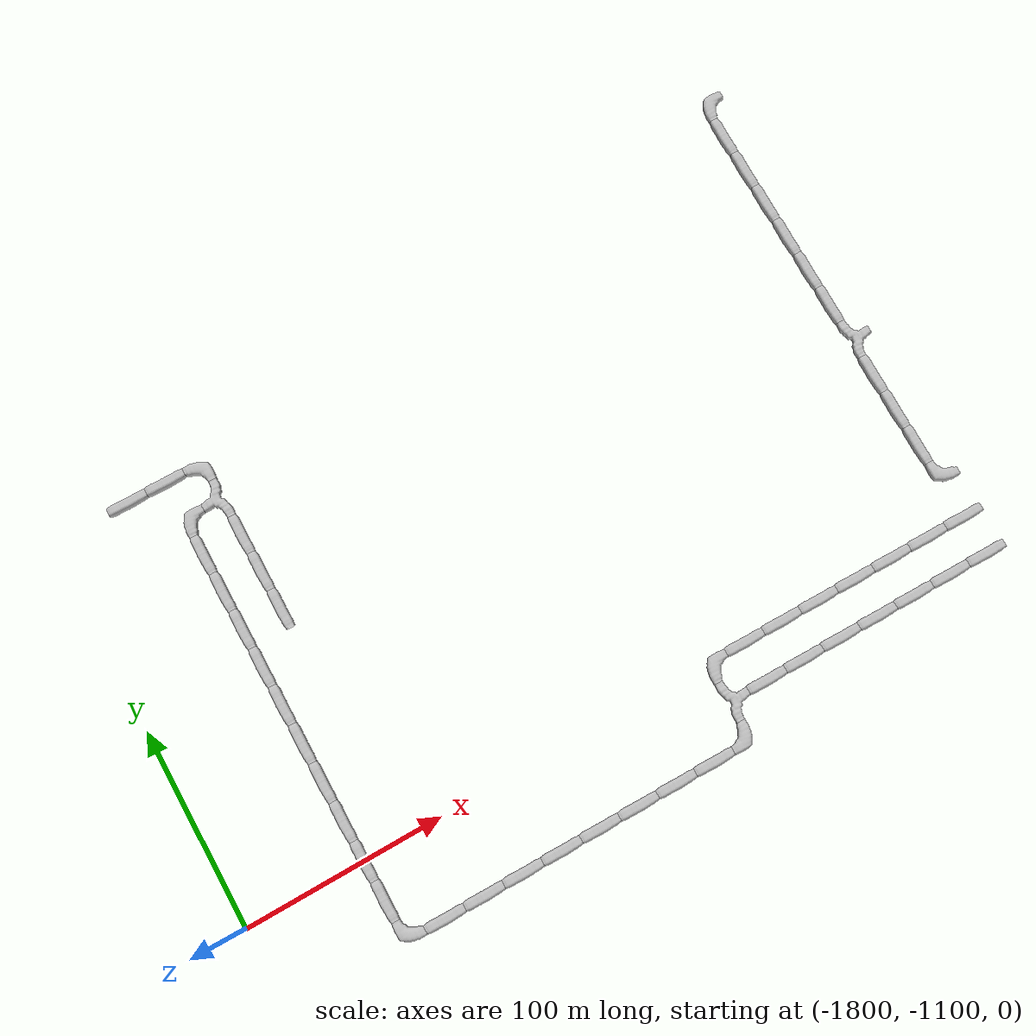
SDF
<sdf version="1.6">
 <world name="cave_32000_64">
  <include>
   <static>true</static>
   <name>cave_-71_-56</name>
   <pose>-1420 -1120 0 0 0 1.5707963267948966</pose>
   <uri>model://cave_straight_20m</uri>
  </include>
  <include>
   <static>true</static>
   <name>cave_-72_-56</name>
   <pose>-1440 -1120 0 0 0 1.5707963267948966</pose>
   <uri>model://cave_straight_20m</uri>
  </include>
  <include>
   <static>true</static>
   <name>cave_-73_-56</name>
   <pose>-1460 -1120 0 0 0 1.5707963267948966</pose>
   <uri>model://cave_straight_20m</uri>
  </include>
  <include>
   <static>true</static>
   <name>cave_-74_-56</name>
   <pose>-1480 -1120 0 0 0 1.5707963267948966</pose>
   <uri>model://cave_straight_20m</uri>
  </include>
  <include>
   <static>true</static>
   <name>cave_-75_-56</name>
   <pose>-1500 -1120 0 0 0 1.5707963267948966</pose>
   <uri>model://cave_straight_20m</uri>
  </include>
  <include>
   <static>true</static>
   <name>cave_-76_-56</name>
   <pose>-1520 -1120 0 0 0 1.5707963267948966</pose>
   <uri>model://cave_straight_20m</uri>
  </include>
  <include>
   <static>true</static>
   <name>cave_-77_-56</name>
   <pose>-1540 -1120 0 0 0 1.5707963267948966</pose>
   <uri>model://cave_straight_20m</uri>
  </include>
  <include>
   <static>true</static>
   <name>cave_-78_-56</name>
   <pose>-1560 -1120 0 0 0 -1.5707963267948966</pose>
   <uri>model://cave_3way_20m</uri>
  </include>
  <include>
   <static>true</static>
   <name>cave_-78_-57</name>
   <pose>-1560 -1140 0 0 0 1.5707963267948966</pose>
   <uri>model://cave_L_20m</uri>
  </include>
  <include>
   <static>true</static>
   <name>cave_-79_-57</name>
   <pose>-1580 -1140 0 0 0 1.5707963267948966</pose>
   <uri>model://cave_straight_20m</uri>
  </include>
  <include>
   <static>true</static>
   <name>cave_-80_-57</name>
   <pose>-1600 -1140 0 0 0 1.5707963267948966</pose>
   <uri>model://cave_straight_20m</uri>
  </include>
  <include>
   <static>true</static>
   <name>cave_-81_-57</name>
   <pose>-1620 -1140 0 0 0 1.5707963267948966</pose>
   <uri>model://cave_straight_20m</uri>
  </include>
  <include>
   <static>true</static>
   <name>cave_-82_-57</name>
   <pose>-1640 -1140 0 0 0 1.5707963267948966</pose>
   <uri>model://cave_straight_20m</uri>
  </include>
  <include>
   <static>true</static>
   <name>cave_-83_-57</name>
   <pose>-1660 -1140 0 0 0 1.5707963267948966</pose>
   <uri>model://cave_straight_20m</uri>
  </include>
  <include>
   <static>true</static>
   <name>cave_-84_-57</name>
   <pose>-1680 -1140 0 0 0 1.5707963267948966</pose>
   <uri>model://cave_straight_20m</uri>
  </include>
  <include>
   <static>true</static>
   <name>cave_-85_-57</name>
   <pose>-1700 -1140 0 0 0 1.5707963267948966</pose>
   <uri>model://cave_straight_20m</uri>
  </include>
  <include>
   <static>true</static>
   <name>cave_-86_-57</name>
   <pose>-1720 -1140 0 0 0 1.5707963267948966</pose>
   <uri>model://cave_straight_20m</uri>
  </include>
  <include>
   <static>true</static>
   <name>cave_-87_-57</name>
   <pose>-1740 -1140 0 0 0 0.0</pose>
   <uri>model://cave_L_20m</uri>
  </include>
  <include>
   <static>true</static>
   <name>cave_-87_-56</name>
   <pose>-1740 -1120 0 0 0 0.0</pose>
   <uri>model://cave_straight_20m</uri>
  </include>
  <include>
   <static>true</static>
   <name>cave_-87_-55</name>
   <pose>-1740 -1100 0 0 0 0.0</pose>
   <uri>model://cave_straight_20m</uri>
  </include>
  <include>
   <static>true</static>
   <name>cave_-87_-54</name>
   <pose>-1740 -1080 0 0 0 0.0</pose>
   <uri>model://cave_straight_20m</uri>
  </include>
  <include>
   <static>true</static>
   <name>cave_-87_-53</name>
   <pose>-1740 -1060 0 0 0 0.0</pose>
   <uri>model://cave_straight_20m</uri>
  </include>
  <include>
   <static>true</static>
   <name>cave_-87_-52</name>
   <pose>-1740 -1040 0 0 0 0.0</pose>
   <uri>model://cave_straight_20m</uri>
  </include>
  <include>
   <static>true</static>
   <name>cave_-87_-51</name>
   <pose>-1740 -1020 0 0 0 0.0</pose>
   <uri>model://cave_straight_20m</uri>
  </include>
  <include>
   <static>true</static>
   <name>cave_-87_-50</name>
   <pose>-1740 -1000 0 0 0 0.0</pose>
   <uri>model://cave_straight_20m</uri>
  </include>
  <include>
   <static>true</static>
   <name>cave_-87_-49</name>
   <pose>-1740 -980 0 0 0 0.0</pose>
   <uri>model://cave_straight_20m</uri>
  </include>
  <include>
   <static>true</static>
   <name>cave_-87_-48</name>
   <pose>-1740 -960 0 0 0 0.0</pose>
   <uri>model://cave_straight_20m</uri>
  </include>
  <include>
   <static>true</static>
   <name>cave_-87_-47</name>
   <pose>-1740 -940 0 0 0 0.0</pose>
   <uri>model://cave_straight_20m</uri>
  </include>
  <include>
   <static>true</static>
   <name>cave_-87_-46</name>
   <pose>-1740 -920 0 0 0 -1.5707963267948966</pose>
   <uri>model://cave_L_20m</uri>
  </include>
  <include>
   <static>true</static>
   <name>cave_-86_-46</name>
   <pose>-1720 -920 0 0 0 1.5707963267948966</pose>
   <uri>model://cave_3way_20m</uri>
  </include>
  <include>
   <static>true</static>
   <name>cave_-86_-47</name>
   <pose>-1720 -940 0 0 0 0.0</pose>
   <uri>model://cave_straight_20m</uri>
  </include>
  <include>
   <static>true</static>
   <name>cave_-86_-48</name>
   <pose>-1720 -960 0 0 0 0.0</pose>
   <uri>model://cave_straight_20m</uri>
  </include>
  <include>
   <static>true</static>
   <name>cave_-86_-49</name>
   <pose>-1720 -980 0 0 0 0.0</pose>
   <uri>model://cave_straight_20m</uri>
  </include>
  <include>
   <static>true</static>
   <name>cave_-86_-45</name>
   <pose>-1720 -900 0 0 0 3.141592653589793</pose>
   <uri>model://cave_L_20m</uri>
  </include>
  <include>
   <static>true</static>
   <name>cave_-87_-45</name>
   <pose>-1740 -900 0 0 0 1.5707963267948966</pose>
   <uri>model://cave_straight_20m</uri>
  </include>
  <include>
   <static>true</static>
   <name>cave_-88_-45</name>
   <pose>-1760 -900 0 0 0 1.5707963267948966</pose>
   <uri>model://cave_straight_20m</uri>
  </include>
  <include>
   <static>true</static>
   <name>cave_-78_-55</name>
   <pose>-1560 -1100 0 0 0 -1.5707963267948966</pose>
   <uri>model://cave_L_20m</uri>
  </include>
  <include>
   <static>true</static>
   <name>cave_-77_-55</name>
   <pose>-1540 -1100 0 0 0 1.5707963267948966</pose>
   <uri>model://cave_straight_20m</uri>
  </include>
  <include>
   <static>true</static>
   <name>cave_-76_-55</name>
   <pose>-1520 -1100 0 0 0 1.5707963267948966</pose>
   <uri>model://cave_straight_20m</uri>
  </include>
  <include>
   <static>true</static>
   <name>cave_-75_-55</name>
   <pose>-1500 -1100 0 0 0 1.5707963267948966</pose>
   <uri>model://cave_straight_20m</uri>
  </include>
  <include>
   <static>true</static>
   <name>cave_-74_-55</name>
   <pose>-1480 -1100 0 0 0 1.5707963267948966</pose>
   <uri>model://cave_straight_20m</uri>
  </include>
  <include>
   <static>true</static>
   <name>cave_-73_-55</name>
   <pose>-1460 -1100 0 0 0 1.5707963267948966</pose>
   <uri>model://cave_straight_20m</uri>
  </include>
  <include>
   <static>true</static>
   <name>cave_-72_-55</name>
   <pose>-1440 -1100 0 0 0 1.5707963267948966</pose>
   <uri>model://cave_straight_20m</uri>
  </include>
  <include>
   <static>true</static>
   <name>cave_-71_-55</name>
   <pose>-1420 -1100 0 0 0 1.5707963267948966</pose>
   <uri>model://cave_straight_20m</uri>
  </include>
  <include>
   <static>true</static>
   <name>cave_-71_-54</name>
   <pose>-1420 -1080 0 0 0 0.0</pose>
   <uri>model://cave_L_20m</uri>
  </include>
  <include>
   <static>true</static>
   <name>cave_-71_-53</name>
   <pose>-1420 -1060 0 0 0 0.0</pose>
   <uri>model://cave_straight_20m</uri>
  </include>
  <include>
   <static>true</static>
   <name>cave_-71_-52</name>
   <pose>-1420 -1040 0 0 0 0.0</pose>
   <uri>model://cave_straight_20m</uri>
  </include>
  <include>
   <static>true</static>
   <name>cave_-71_-51</name>
   <pose>-1420 -1020 0 0 0 0.0</pose>
   <uri>model://cave_straight_20m</uri>
  </include>
  <include>
   <static>true</static>
   <name>cave_-71_-50</name>
   <pose>-1420 -1000 0 0 0 -1.5707963267948966</pose>
   <uri>model://cave_3way_20m</uri>
  </include>
  <include>
   <static>true</static>
   <name>cave_-71_-49</name>
   <pose>-1420 -980 0 0 0 0.0</pose>
   <uri>model://cave_straight_20m</uri>
  </include>
  <include>
   <static>true</static>
   <name>cave_-71_-48</name>
   <pose>-1420 -960 0 0 0 0.0</pose>
   <uri>model://cave_straight_20m</uri>
  </include>
  <include>
   <static>true</static>
   <name>cave_-71_-47</name>
   <pose>-1420 -940 0 0 0 0.0</pose>
   <uri>model://cave_straight_20m</uri>
  </include>
  <include>
   <static>true</static>
   <name>cave_-71_-46</name>
   <pose>-1420 -920 0 0 0 0.0</pose>
   <uri>model://cave_straight_20m</uri>
  </include>
  <include>
   <static>true</static>
   <name>cave_-71_-45</name>
   <pose>-1420 -900 0 0 0 0.0</pose>
   <uri>model://cave_straight_20m</uri>
  </include>
  <include>
   <static>true</static>
   <name>cave_-71_-44</name>
   <pose>-1420 -880 0 0 0 0.0</pose>
   <uri>model://cave_straight_20m</uri>
  </include>
  <include>
   <static>true</static>
   <name>cave_-71_-43</name>
   <pose>-1420 -860 0 0 0 -1.5707963267948966</pose>
   <uri>model://cave_L_20m</uri>
  </include>
 </world>
</sdf>
